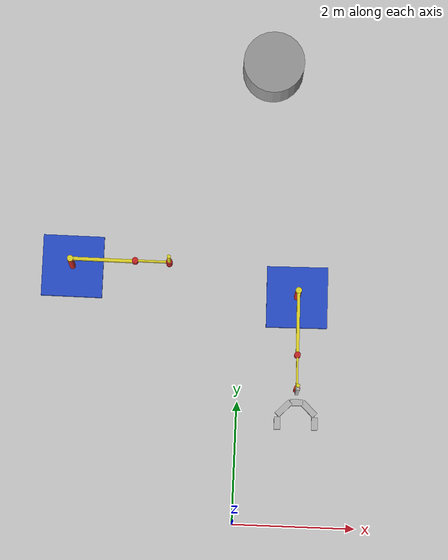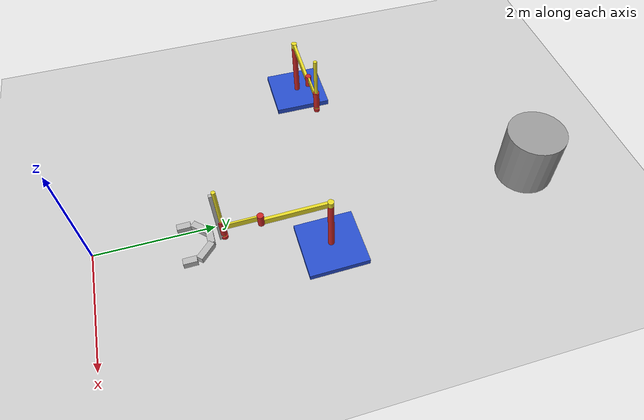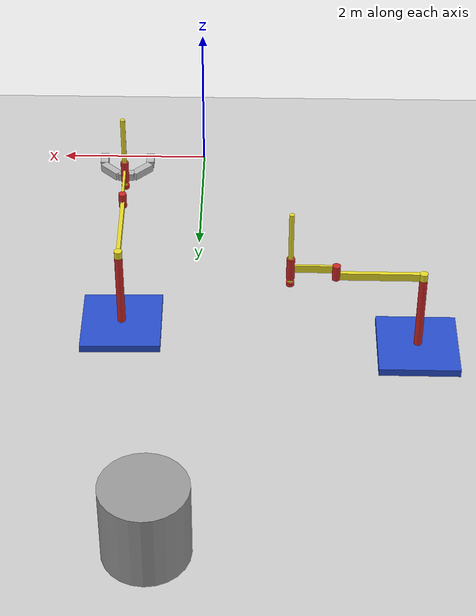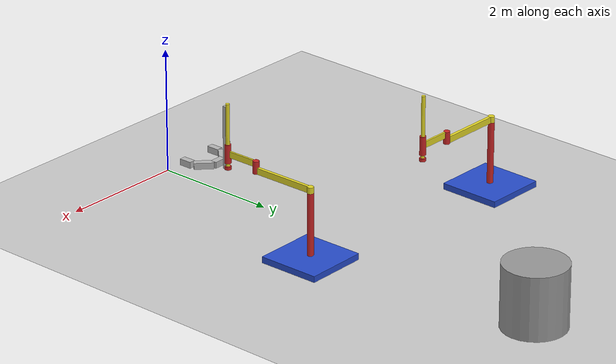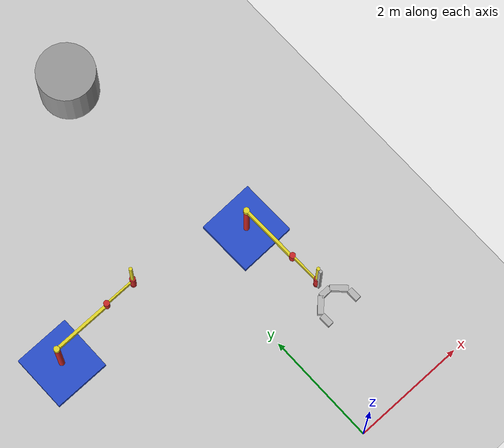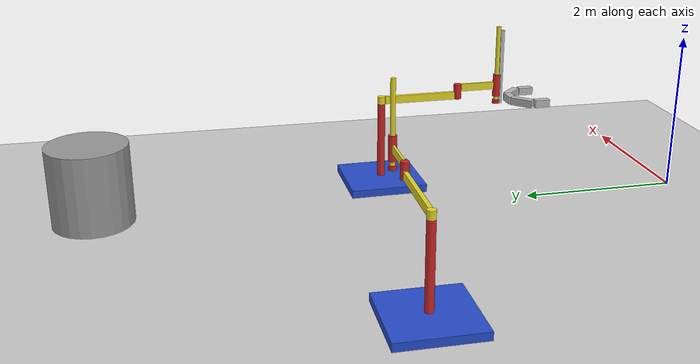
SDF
<sdf version="1.6">
 <world name="default">
  <model name="ground_plane">
   <static>1</static>
   <link name="link">
    <collision name="collision">
     <geometry><plane><normal>0 0 1</normal><size>100 100</size></plane></geometry>
     <surface>
      <contact><collide_bitmask>65535</collide_bitmask></contact>
      <friction><ode><mu>100</mu><mu2>50</mu2></ode></friction>
     </surface>
    </collision>
    <visual name="visual">
     <cast_shadows>0</cast_shadows>
     <geometry><plane><normal>0 0 1</normal><size>100 100</size></plane></geometry>
     <material>
      <script><uri>file://media/materials/scripts/gazebo.material</uri><name>Gazebo/Grey</name></script>
     </material>
    </visual>
   </link>
  </model>
  <model name="simple_arm">
   <link name="arm_base">
    <inertial>
     <pose>0 0 0.00099 0 -0 0</pose>
     <inertia><ixx>1.11</ixx><ixy>0</ixy><ixz>0</ixz><iyy>100.11</iyy><iyz>0</iyz><izz>1.01</izz></inertia>
     <mass>101</mass>
    </inertial>
    <collision name="arm_base_geom">
     <pose>0 0 0.05 0 -0 0</pose>
     <geometry><box><size>1 1 0.1</size></box></geometry>
    </collision>
    <visual name="arm_base_geom_visual">
     <pose>0 0 0.05 0 -0 0</pose>
     <geometry><box><size>1 1 0.1</size></box></geometry>
     <material>
      <script><uri>file://media/materials/scripts/gazebo.material</uri><name>Gazebo/Blue</name></script>
     </material>
    </visual>
    <collision name="arm_base_geom_arm_trunk">
     <pose>0 0 0.6 0 -0 0</pose>
     <geometry><cylinder><radius>0.05</radius><length>1</length></cylinder></geometry>
    </collision>
    <visual name="arm_base_geom_arm_trunk_visual">
     <pose>0 0 0.6 0 -0 0</pose>
     <geometry><cylinder><radius>0.05</radius><length>1</length></cylinder></geometry>
     <material>
      <script><uri>file://media/materials/scripts/gazebo.material</uri><name>Gazebo/Red</name></script>
     </material>
    </visual>
   </link>
   <link name="arm_shoulder_pan">
    <pose>0 0 1.1 0 -0 0</pose>
    <inertial>
     <pose>0.045455 0 0 0 -0 0</pose>
     <inertia><ixx>0.011</ixx><ixy>0</ixy><ixz>0</ixz><iyy>0.0225</iyy><iyz>0</iyz><izz>0.0135</izz></inertia>
     <mass>1.1</mass>
    </inertial>
    <collision name="arm_shoulder_pan_geom">
     <pose>0 0 0.05 0 -0 0</pose>
     <geometry><cylinder><radius>0.05</radius><length>0.1</length></cylinder></geometry>
    </collision>
    <visual name="arm_shoulder_pan_geom_visual">
     <pose>0 0 0.05 0 -0 0</pose>
     <geometry><cylinder><radius>0.05</radius><length>0.1</length></cylinder></geometry>
     <material>
      <script><uri>file://media/materials/scripts/gazebo.material</uri><name>Gazebo/Yellow</name></script>
     </material>
    </visual>
    <collision name="arm_shoulder_pan_geom_arm_shoulder">
     <pose>0.55 0 0.05 0 -0 0</pose>
     <geometry><box><size>1 0.05 0.1</size></box></geometry>
    </collision>
    <visual name="arm_shoulder_pan_geom_arm_shoulder_visual">
     <pose>0.55 0 0.05 0 -0 0</pose>
     <geometry><box><size>1 0.05 0.1</size></box></geometry>
     <material>
      <script><uri>file://media/materials/scripts/gazebo.material</uri><name>Gazebo/Yellow</name></script>
     </material>
    </visual>
   </link>
   <link name="arm_elbow_pan">
    <pose>1.05 0 1.1 0 -0 0</pose>
    <inertial>
     <pose>0.0875 0 0.083333 0 -0 0</pose>
     <inertia>
      <ixx>0.031</ixx>
      <ixy>0</ixy>
      <ixz>0.005</ixz>
      <iyy>0.07275</iyy>
      <iyz>0</iyz>
      <izz>0.04475</izz>
     </inertia>
     <mass>1.2</mass>
    </inertial>
    <collision name="arm_elbow_pan_geom">
     <pose>0 0 0.1 0 -0 0</pose>
     <geometry><cylinder><radius>0.05</radius><length>0.2</length></cylinder></geometry>
    </collision>
    <visual name="arm_elbow_pan_geom_visual">
     <pose>0 0 0.1 0 -0 0</pose>
     <geometry><cylinder><radius>0.05</radius><length>0.2</length></cylinder></geometry>
     <material>
      <script><uri>file://media/materials/scripts/gazebo.material</uri><name>Gazebo/Red</name></script>
     </material>
    </visual>
    <collision name="arm_elbow_pan_geom_arm_elbow">
     <pose>0.3 0 0.15 0 -0 0</pose>
     <geometry><box><size>0.5 0.03 0.1</size></box></geometry>
    </collision>
    <visual name="arm_elbow_pan_geom_arm_elbow_visual">
     <pose>0.3 0 0.15 0 -0 0</pose>
     <geometry><box><size>0.5 0.03 0.1</size></box></geometry>
     <material>
      <script><uri>file://media/materials/scripts/gazebo.material</uri><name>Gazebo/Yellow</name></script>
     </material>
    </visual>
    <collision name="arm_elbow_pan_geom_arm_wrist">
     <pose>0.55 0 0.15 0 -0 0</pose>
     <geometry><cylinder><radius>0.05</radius><length>0.3</length></cylinder></geometry>
    </collision>
    <visual name="arm_elbow_pan_geom_arm_wrist_visual">
     <pose>0.55 0 0.15 0 -0 0</pose>
     <geometry><cylinder><radius>0.05</radius><length>0.3</length></cylinder></geometry>
     <material>
      <script><uri>file://media/materials/scripts/gazebo.material</uri><name>Gazebo/Red</name></script>
     </material>
    </visual>
   </link>
   <link name="arm_wrist_lift">
    <pose>1.6 0 1.05 0 -0 0</pose>
    <inertial>
     <inertia><ixx>0.01</ixx><ixy>0</ixy><ixz>0</ixz><iyy>0.01</iyy><iyz>0</iyz><izz>0.001</izz></inertia>
     <mass>0.1</mass>
    </inertial>
    <collision name="arm_wrist_lift_geom">
     <pose>0 0 0.5 0 -0 0</pose>
     <geometry><cylinder><radius>0.03</radius><length>1</length></cylinder></geometry>
    </collision>
    <visual name="arm_wrist_lift_geom_visual">
     <pose>0 0 0.5 0 -0 0</pose>
     <geometry><cylinder><radius>0.03</radius><length>1</length></cylinder></geometry>
     <material>
      <script><uri>file://media/materials/scripts/gazebo.material</uri><name>Gazebo/Yellow</name></script>
     </material>
    </visual>
   </link>
   <link name="arm_wrist_roll">
    <pose>1.6 0 1 0 -0 0</pose>
    <inertial>
     <inertia><ixx>0.01</ixx><ixy>0</ixy><ixz>0</ixz><iyy>0.01</iyy><iyz>0</iyz><izz>0.001</izz></inertia>
     <mass>0.1</mass>
    </inertial>
    <collision name="arm_wrist_roll_geom">
     <pose>0 0 0.025 0 -0 0</pose>
     <geometry><cylinder><radius>0.05</radius><length>0.05</length></cylinder></geometry>
    </collision>
    <visual name="arm_wrist_roll_geom_visual">
     <pose>0 0 0.025 0 -0 0</pose>
     <geometry><cylinder><radius>0.05</radius><length>0.05</length></cylinder></geometry>
     <material>
      <script><uri>file://media/materials/scripts/gazebo.material</uri><name>Gazebo/Red</name></script>
     </material>
    </visual>
   </link>
   <joint name="arm_shoulder_pan_joint" type="revolute">
    <parent>arm_base</parent>
    <child>arm_shoulder_pan</child>
    <axis>
     <dynamics>
      <damping>1</damping>
      <friction>0</friction>
      <spring_reference>0</spring_reference>
      <spring_stiffness>0</spring_stiffness>
     </dynamics>
     <xyz>0 0 1</xyz>
     <use_parent_model_frame>1</use_parent_model_frame>
     <limit><lower>-1e+16</lower><upper>1e+16</upper></limit>
    </axis>
   </joint>
   <joint name="arm_elbow_pan_joint" type="revolute">
    <parent>arm_shoulder_pan</parent>
    <child>arm_elbow_pan</child>
    <axis>
     <dynamics>
      <damping>1</damping>
      <friction>0</friction>
      <spring_reference>0</spring_reference>
      <spring_stiffness>0</spring_stiffness>
     </dynamics>
     <xyz>0 0 1</xyz>
     <use_parent_model_frame>1</use_parent_model_frame>
     <limit><lower>-1e+16</lower><upper>1e+16</upper></limit>
    </axis>
   </joint>
   <joint name="arm_wrist_lift_joint" type="prismatic">
    <parent>arm_elbow_pan</parent>
    <child>arm_wrist_lift</child>
    <axis>
     <dynamics>
      <damping>1</damping>
      <friction>0</friction>
      <spring_reference>0</spring_reference>
      <spring_stiffness>0</spring_stiffness>
     </dynamics>
     <limit><lower>-0.8</lower><upper>0.1</upper></limit>
     <xyz>0 0 1</xyz>
     <use_parent_model_frame>1</use_parent_model_frame>
    </axis>
   </joint>
   <joint name="arm_wrist_roll_joint" type="revolute">
    <parent>arm_wrist_lift</parent>
    <child>arm_wrist_roll</child>
    <axis>
     <dynamics>
      <damping>1</damping>
      <friction>0</friction>
      <spring_reference>0</spring_reference>
      <spring_stiffness>0</spring_stiffness>
     </dynamics>
     <limit><lower>-2.99999</lower><upper>2.99999</upper></limit>
     <xyz>0 0 1</xyz>
     <use_parent_model_frame>1</use_parent_model_frame>
    </axis>
   </joint>
   <pose>-2.78313 4.11364 -0 0 0 -0.004412</pose>
  </model>
  <model name="simple_arm_gripper">
   <link name="simple_arm::arm_base">
    <inertial>
     <pose>0 0 0.00099 0 -0 0</pose>
     <inertia><ixx>1.11</ixx><ixy>0</ixy><ixz>0</ixz><iyy>100.11</iyy><iyz>0</iyz><izz>1.01</izz></inertia>
     <mass>101</mass>
    </inertial>
    <collision name="arm_base_geom">
     <pose>0 0 0.05 0 -0 0</pose>
     <geometry><box><size>1 1 0.1</size></box></geometry>
    </collision>
    <visual name="arm_base_geom_visual">
     <pose>0 0 0.05 0 -0 0</pose>
     <geometry><box><size>1 1 0.1</size></box></geometry>
     <material>
      <script><uri>file://media/materials/scripts/gazebo.material</uri><name>Gazebo/Blue</name></script>
     </material>
    </visual>
    <collision name="arm_base_geom_arm_trunk">
     <pose>0 0 0.6 0 -0 0</pose>
     <geometry><cylinder><radius>0.05</radius><length>1</length></cylinder></geometry>
    </collision>
    <visual name="arm_base_geom_arm_trunk_visual">
     <pose>0 0 0.6 0 -0 0</pose>
     <geometry><cylinder><radius>0.05</radius><length>1</length></cylinder></geometry>
     <material>
      <script><uri>file://media/materials/scripts/gazebo.material</uri><name>Gazebo/Red</name></script>
     </material>
    </visual>
   </link>
   <link name="simple_arm::arm_shoulder_pan">
    <pose>0 0 1.1 0 -0 0</pose>
    <inertial>
     <pose>0.045455 0 0 0 -0 0</pose>
     <inertia><ixx>0.011</ixx><ixy>0</ixy><ixz>0</ixz><iyy>0.0225</iyy><iyz>0</iyz><izz>0.0135</izz></inertia>
     <mass>1.1</mass>
    </inertial>
    <collision name="arm_shoulder_pan_geom">
     <pose>0 0 0.05 0 -0 0</pose>
     <geometry><cylinder><radius>0.05</radius><length>0.1</length></cylinder></geometry>
    </collision>
    <visual name="arm_shoulder_pan_geom_visual">
     <pose>0 0 0.05 0 -0 0</pose>
     <geometry><cylinder><radius>0.05</radius><length>0.1</length></cylinder></geometry>
     <material>
      <script><uri>file://media/materials/scripts/gazebo.material</uri><name>Gazebo/Yellow</name></script>
     </material>
    </visual>
    <collision name="arm_shoulder_pan_geom_arm_shoulder">
     <pose>0.55 0 0.05 0 -0 0</pose>
     <geometry><box><size>1 0.05 0.1</size></box></geometry>
    </collision>
    <visual name="arm_shoulder_pan_geom_arm_shoulder_visual">
     <pose>0.55 0 0.05 0 -0 0</pose>
     <geometry><box><size>1 0.05 0.1</size></box></geometry>
     <material>
      <script><uri>file://media/materials/scripts/gazebo.material</uri><name>Gazebo/Yellow</name></script>
     </material>
    </visual>
   </link>
   <link name="simple_arm::arm_elbow_pan">
    <pose>1.05 0 1.1 0 -0 0</pose>
    <inertial>
     <pose>0.0875 0 0.083333 0 -0 0</pose>
     <inertia>
      <ixx>0.031</ixx>
      <ixy>0</ixy>
      <ixz>0.005</ixz>
      <iyy>0.07275</iyy>
      <iyz>0</iyz>
      <izz>0.04475</izz>
     </inertia>
     <mass>1.2</mass>
    </inertial>
    <collision name="arm_elbow_pan_geom">
     <pose>0 0 0.1 0 -0 0</pose>
     <geometry><cylinder><radius>0.05</radius><length>0.2</length></cylinder></geometry>
    </collision>
    <visual name="arm_elbow_pan_geom_visual">
     <pose>0 0 0.1 0 -0 0</pose>
     <geometry><cylinder><radius>0.05</radius><length>0.2</length></cylinder></geometry>
     <material>
      <script><uri>file://media/materials/scripts/gazebo.material</uri><name>Gazebo/Red</name></script>
     </material>
    </visual>
    <collision name="arm_elbow_pan_geom_arm_elbow">
     <pose>0.3 0 0.15 0 -0 0</pose>
     <geometry><box><size>0.5 0.03 0.1</size></box></geometry>
    </collision>
    <visual name="arm_elbow_pan_geom_arm_elbow_visual">
     <pose>0.3 0 0.15 0 -0 0</pose>
     <geometry><box><size>0.5 0.03 0.1</size></box></geometry>
     <material>
      <script><uri>file://media/materials/scripts/gazebo.material</uri><name>Gazebo/Yellow</name></script>
     </material>
    </visual>
    <collision name="arm_elbow_pan_geom_arm_wrist">
     <pose>0.55 0 0.15 0 -0 0</pose>
     <geometry><cylinder><radius>0.05</radius><length>0.3</length></cylinder></geometry>
    </collision>
    <visual name="arm_elbow_pan_geom_arm_wrist_visual">
     <pose>0.55 0 0.15 0 -0 0</pose>
     <geometry><cylinder><radius>0.05</radius><length>0.3</length></cylinder></geometry>
     <material>
      <script><uri>file://media/materials/scripts/gazebo.material</uri><name>Gazebo/Red</name></script>
     </material>
    </visual>
   </link>
   <link name="simple_arm::arm_wrist_lift">
    <pose>1.6 0 1.05 0 -0 0</pose>
    <inertial>
     <inertia><ixx>0.01</ixx><ixy>0</ixy><ixz>0</ixz><iyy>0.01</iyy><iyz>0</iyz><izz>0.001</izz></inertia>
     <mass>0.1</mass>
    </inertial>
    <collision name="arm_wrist_lift_geom">
     <pose>0 0 0.5 0 -0 0</pose>
     <geometry><cylinder><radius>0.03</radius><length>1</length></cylinder></geometry>
    </collision>
    <visual name="arm_wrist_lift_geom_visual">
     <pose>0 0 0.5 0 -0 0</pose>
     <geometry><cylinder><radius>0.03</radius><length>1</length></cylinder></geometry>
     <material>
      <script><uri>file://media/materials/scripts/gazebo.material</uri><name>Gazebo/Yellow</name></script>
     </material>
    </visual>
   </link>
   <link name="simple_arm::arm_wrist_roll">
    <pose>1.6 0 1 0 -0 0</pose>
    <inertial>
     <inertia><ixx>0.01</ixx><ixy>0</ixy><ixz>0</ixz><iyy>0.01</iyy><iyz>0</iyz><izz>0.001</izz></inertia>
     <mass>0.1</mass>
    </inertial>
    <collision name="arm_wrist_roll_geom">
     <pose>0 0 0.025 0 -0 0</pose>
     <geometry><cylinder><radius>0.05</radius><length>0.05</length></cylinder></geometry>
    </collision>
    <visual name="arm_wrist_roll_geom_visual">
     <pose>0 0 0.025 0 -0 0</pose>
     <geometry><cylinder><radius>0.05</radius><length>0.05</length></cylinder></geometry>
     <material>
      <script><uri>file://media/materials/scripts/gazebo.material</uri><name>Gazebo/Red</name></script>
     </material>
    </visual>
   </link>
   <joint name="simple_arm::arm_shoulder_pan_joint" type="revolute">
    <parent>simple_arm::arm_base</parent>
    <child>simple_arm::arm_shoulder_pan</child>
    <axis>
     <dynamics>
      <damping>1</damping>
      <friction>0</friction>
      <spring_reference>0</spring_reference>
      <spring_stiffness>0</spring_stiffness>
     </dynamics>
     <xyz>0 0 1</xyz>
     <use_parent_model_frame>1</use_parent_model_frame>
     <limit><lower>-1e+16</lower><upper>1e+16</upper></limit>
    </axis>
   </joint>
   <joint name="simple_arm::arm_elbow_pan_joint" type="revolute">
    <parent>simple_arm::arm_shoulder_pan</parent>
    <child>simple_arm::arm_elbow_pan</child>
    <axis>
     <dynamics>
      <damping>1</damping>
      <friction>0</friction>
      <spring_reference>0</spring_reference>
      <spring_stiffness>0</spring_stiffness>
     </dynamics>
     <xyz>0 0 1</xyz>
     <use_parent_model_frame>1</use_parent_model_frame>
     <limit><lower>-1e+16</lower><upper>1e+16</upper></limit>
    </axis>
   </joint>
   <joint name="simple_arm::arm_wrist_lift_joint" type="prismatic">
    <parent>simple_arm::arm_elbow_pan</parent>
    <child>simple_arm::arm_wrist_lift</child>
    <axis>
     <dynamics>
      <damping>1</damping>
      <friction>0</friction>
      <spring_reference>0</spring_reference>
      <spring_stiffness>0</spring_stiffness>
     </dynamics>
     <limit><lower>-0.8</lower><upper>0.1</upper></limit>
     <xyz>0 0 1</xyz>
     <use_parent_model_frame>1</use_parent_model_frame>
    </axis>
   </joint>
   <joint name="simple_arm::arm_wrist_roll_joint" type="revolute">
    <parent>simple_arm::arm_wrist_lift</parent>
    <child>simple_arm::arm_wrist_roll</child>
    <axis>
     <dynamics>
      <damping>1</damping>
      <friction>0</friction>
      <spring_reference>0</spring_reference>
      <spring_stiffness>0</spring_stiffness>
     </dynamics>
     <limit><lower>-2.99999</lower><upper>2.99999</upper></limit>
     <xyz>0 0 1</xyz>
     <use_parent_model_frame>1</use_parent_model_frame>
    </axis>
   </joint>
   <link name="simple_gripper::riser">
    <pose>1.65 0 1.5 0 -0 0</pose>
    <inertial>
     <mass>10</mass>
     <inertia><ixx>1</ixx><ixy>0</ixy><ixz>0</ixz><iyy>1</iyy><iyz>0</iyz><izz>1</izz></inertia>
    </inertial>
    <collision name="collision">
     <geometry><box><size>0.05 0.05 1</size></box></geometry>
     <surface><contact><ode><max_vel>0</max_vel></ode></contact></surface>
    </collision>
    <visual name="visual"><geometry><box><size>0.05 0.05 1</size></box></geometry></visual>
   </link>
   <link name="simple_gripper::palm">
    <pose>1.8 0 1.05 0 -0 0</pose>
    <inertial>
     <mass>0.5</mass>
     <inertia><ixx>1</ixx><ixy>0</ixy><ixz>0</ixz><iyy>1</iyy><iyz>0</iyz><izz>1</izz></inertia>
    </inertial>
    <collision name="collision">
     <geometry><box><size>0.1 0.2 0.1</size></box></geometry>
     <surface><contact><ode><max_vel>0</max_vel></ode></contact></surface>
    </collision>
    <visual name="visual"><geometry><box><size>0.1 0.2 0.1</size></box></geometry></visual>
   </link>
   <link name="simple_gripper::left_finger">
    <pose>1.9 0.2 1.05 0 0 -0.78539</pose>
    <inertial>
     <mass>0.1</mass>
     <inertia><ixx>1</ixx><ixy>0</ixy><ixz>0</ixz><iyy>1</iyy><iyz>0</iyz><izz>1</izz></inertia>
    </inertial>
    <collision name="collision">
     <geometry><box><size>0.1 0.3 0.1</size></box></geometry>
     <surface>
      <friction><ode><mu>0.1</mu><mu2>0</mu2></ode></friction>
      <contact><ode><max_vel>0</max_vel></ode></contact>
     </surface>
    </collision>
    <visual name="visual"><geometry><box><size>0.1 0.3 0.1</size></box></geometry></visual>
   </link>
   <link name="simple_gripper::left_finger_tip">
    <pose>2.136 0.3 1.05 0 -0 1.5707</pose>
    <inertial>
     <mass>0.5</mass>
     <inertia><ixx>1</ixx><ixy>0</ixy><ixz>0</ixz><iyy>1</iyy><iyz>0</iyz><izz>1</izz></inertia>
    </inertial>
    <collision name="collision">
     <geometry><box><size>0.1 0.2 0.1</size></box></geometry>
     <surface>
      <friction><ode><mu>0.1</mu><mu2>0</mu2></ode></friction>
      <contact><ode><max_vel>0</max_vel></ode></contact>
     </surface>
    </collision>
    <visual name="visual"><geometry><box><size>0.1 0.2 0.1</size></box></geometry></visual>
   </link>
   <link name="simple_gripper::right_finger">
    <pose>1.9 -0.2 1.05 0 -0 0.78539</pose>
    <inertial>
     <mass>0.1</mass>
     <inertia><ixx>1</ixx><ixy>0</ixy><ixz>0</ixz><iyy>1</iyy><iyz>0</iyz><izz>1</izz></inertia>
    </inertial>
    <collision name="collision">
     <geometry><box><size>0.1 0.3 0.1</size></box></geometry>
     <surface>
      <friction><ode><mu>0.1</mu><mu2>0</mu2></ode></friction>
      <contact><ode><max_vel>0</max_vel></ode></contact>
     </surface>
    </collision>
    <visual name="visual"><geometry><box><size>0.1 0.3 0.1</size></box></geometry></visual>
   </link>
   <link name="simple_gripper::right_finger_tip">
    <pose>2.136 -0.3 1.05 0 -0 1.5707</pose>
    <inertial>
     <mass>0.1</mass>
     <inertia><ixx>1</ixx><ixy>0</ixy><ixz>0</ixz><iyy>1</iyy><iyz>0</iyz><izz>1</izz></inertia>
    </inertial>
    <collision name="collision">
     <geometry><box><size>0.1 0.2 0.1</size></box></geometry>
     <surface>
      <friction><ode><mu>0.1</mu><mu2>0</mu2></ode></friction>
      <contact><ode><max_vel>0</max_vel></ode></contact>
     </surface>
    </collision>
    <visual name="visual"><geometry><box><size>0.1 0.2 0.1</size></box></geometry></visual>
   </link>
   <joint name="simple_gripper::palm_left_finger" type="revolute">
    <pose>0 -0.15 0 0 -0 0</pose>
    <child>simple_gripper::left_finger</child>
    <parent>simple_gripper::palm</parent>
    <axis>
     <limit><lower>-0.8</lower><upper>0.8</upper></limit>
     <xyz>0 0 1</xyz>
     <use_parent_model_frame>1</use_parent_model_frame>
     <dynamics><spring_reference>0</spring_reference><spring_stiffness>0</spring_stiffness></dynamics>
    </axis>
   </joint>
   <joint name="simple_gripper::left_finger_tip" type="revolute">
    <pose>0 0.1 0 0 -0 0</pose>
    <child>simple_gripper::left_finger_tip</child>
    <parent>simple_gripper::left_finger</parent>
    <axis>
     <limit><lower>-0.8</lower><upper>0.8</upper></limit>
     <xyz>0 0 1</xyz>
     <use_parent_model_frame>1</use_parent_model_frame>
     <dynamics><spring_reference>0</spring_reference><spring_stiffness>0</spring_stiffness></dynamics>
    </axis>
   </joint>
   <joint name="simple_gripper::palm_right_finger" type="revolute">
    <pose>0 0.15 0 0 -0 0</pose>
    <child>simple_gripper::right_finger</child>
    <parent>simple_gripper::palm</parent>
    <axis>
     <limit><lower>-0.8</lower><upper>0.8</upper></limit>
     <xyz>0 0 1</xyz>
     <use_parent_model_frame>1</use_parent_model_frame>
     <dynamics><spring_reference>0</spring_reference><spring_stiffness>0</spring_stiffness></dynamics>
    </axis>
   </joint>
   <joint name="simple_gripper::right_finger_tip" type="revolute">
    <pose>0 0.1 0 0 -0 0</pose>
    <child>simple_gripper::right_finger_tip</child>
    <parent>simple_gripper::right_finger</parent>
    <axis>
     <limit><lower>-0.8</lower><upper>0.8</upper></limit>
     <xyz>0 0 1</xyz>
     <use_parent_model_frame>1</use_parent_model_frame>
     <dynamics><spring_reference>0</spring_reference><spring_stiffness>0</spring_stiffness></dynamics>
    </axis>
   </joint>
   <joint name="simple_gripper::palm_riser" type="prismatic">
    <child>simple_gripper::palm</child>
    <parent>simple_gripper::riser</parent>
    <axis>
     <limit><lower>0</lower><upper>0.9</upper></limit>
     <xyz>0 0 1</xyz>
     <use_parent_model_frame>1</use_parent_model_frame>
     <dynamics><spring_reference>0</spring_reference><spring_stiffness>0</spring_stiffness></dynamics>
    </axis>
   </joint>
   <gripper name="simple_gripper">
    <grasp_check>
     <detach_steps>40</detach_steps>
     <attach_steps>20</attach_steps>
     <min_contact_count>2</min_contact_count>
    </grasp_check>
    <gripper_link>simple_gripper::right_finger</gripper_link>
    <gripper_link>simple_gripper::right_finger_tip</gripper_link>
    <gripper_link>simple_gripper::left_finger</gripper_link>
    <gripper_link>simple_gripper::left_finger_tip</gripper_link>
    <palm_link>simple_gripper::palm</palm_link>
   </gripper>
   <plugin name="simple_arm_plugin" filename="libJointTrajectoryPlugin.so"/>
   <joint name="arm_gripper_joint" type="revolute">
    <parent>simple_arm::arm_wrist_roll</parent>
    <child>simple_gripper::riser</child>
    <axis>
     <limit><lower>0</lower><upper>0</upper></limit>
     <xyz>0 0 1</xyz>
     <use_parent_model_frame>1</use_parent_model_frame>
     <dynamics><spring_reference>0</spring_reference><spring_stiffness>0</spring_stiffness></dynamics>
    </axis>
   </joint>
   <pose>0.914609 3.74954 -0.000151 -0.00031 5e-06 -1.55442</pose>
  </model>
  <model name="unit_cylinder">
   <pose>0.375948 7.48221 0.499997 3e-06 4e-06 -0</pose>
   <link name="link">
    <inertial>
     <mass>1</mass>
     <inertia><ixx>0.145833</ixx><ixy>0</ixy><ixz>0</ixz><iyy>0.145833</iyy><iyz>0</iyz><izz>0.125</izz></inertia>
    </inertial>
    <collision name="collision">
     <geometry><cylinder><radius>0.5</radius><length>1</length></cylinder></geometry>
    </collision>
    <visual name="visual">
     <geometry><cylinder><radius>0.5</radius><length>1</length></cylinder></geometry>
     <material>
      <script><name>Gazebo/Grey</name><uri>file://media/materials/scripts/gazebo.material</uri></script>
     </material>
    </visual>
   </link>
  </model>
 </world>
</sdf>
